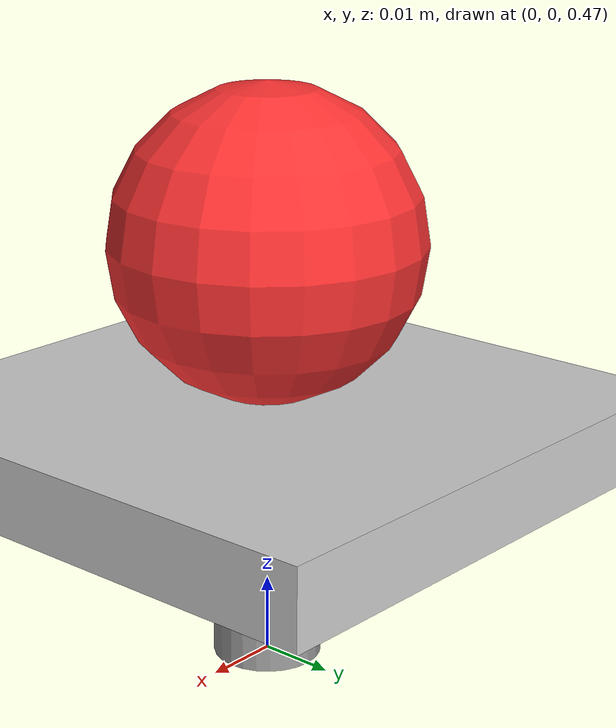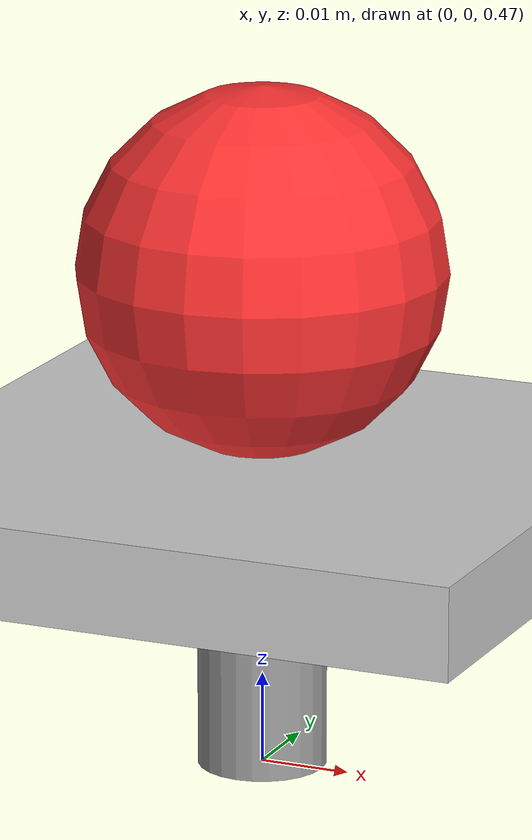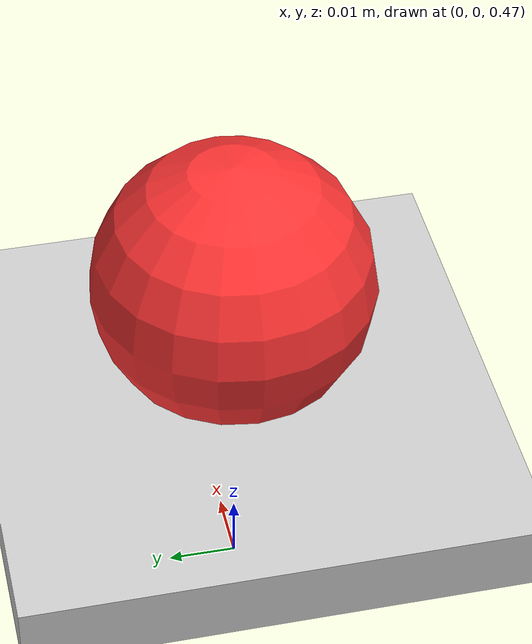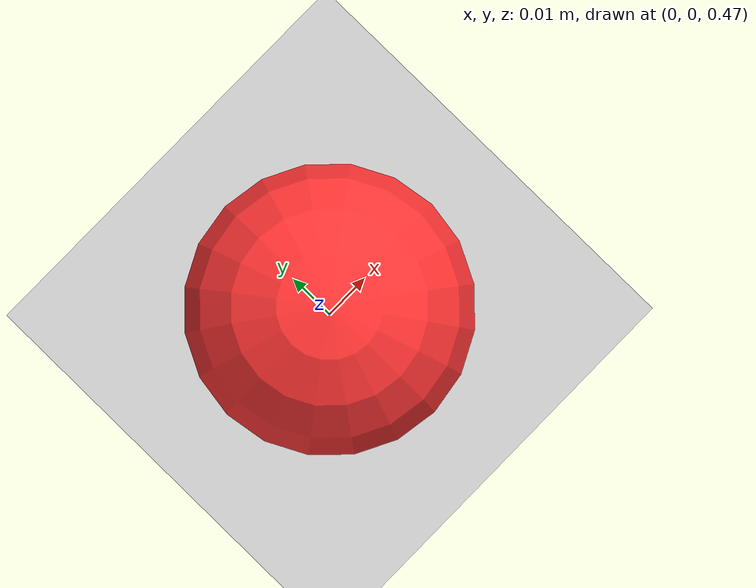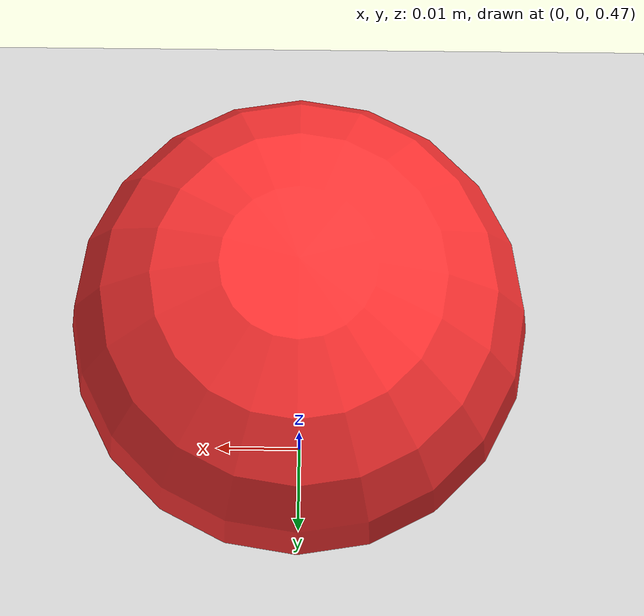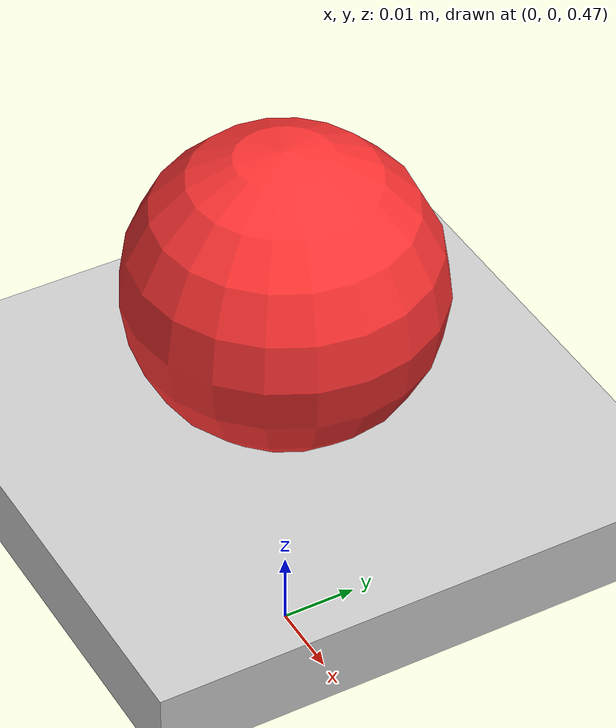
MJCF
<mujoco model="ball_and_plate">
  <worldbody>
    <body name="plate" pos="0 0 0.5">
      <geom name="plate_geom" type="box" size="0.15 0.15 0.005"
            rgba="0.8 0.8 0.8 1" mass="0.5"/>
      <geom name="stem" type="cylinder" size="0.007 0.0125"
            pos="0 0 -0.0175" rgba="0.6 0.6 0.6 1" mass="0"/>
      <body name="ball" pos="0 0 0.025">
        <joint name="ball_free" type="free"/>
        <geom name="ball_geom" type="sphere" size="0.02"
              rgba="1 0.2 0.2 1" mass="0.1"/>
      </body>
    </body>
  </worldbody>
</mujoco>
